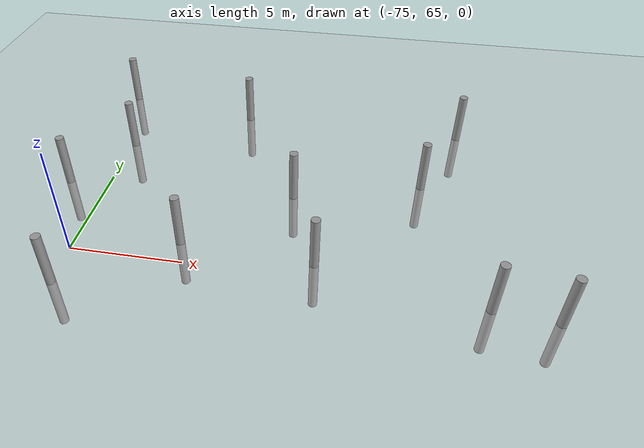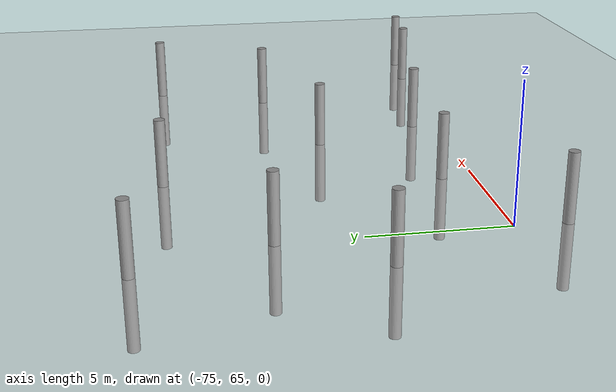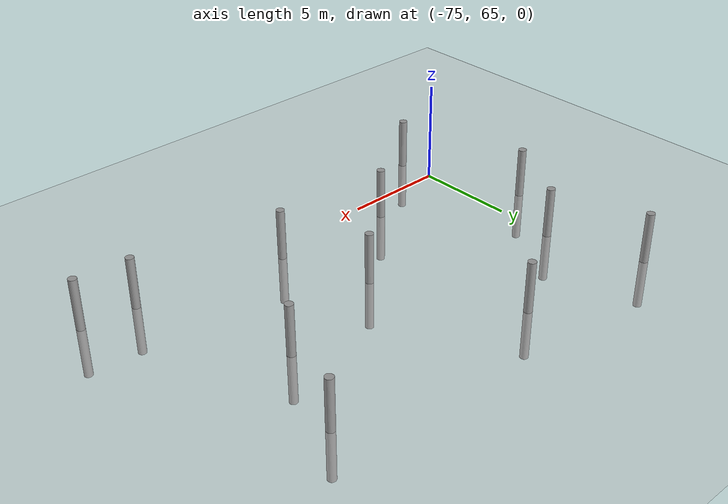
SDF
<sdf version="1.6">
 <world name="default">
  <model name="ground_plane">
   <static>1</static>
   <link name="link">
    <collision name="collision">
     <geometry><plane><normal>0 0 1</normal><size>100 100</size></plane></geometry>
     <surface><friction><ode><mu>100</mu><mu2>50</mu2></ode></friction></surface>
    </collision>
    <visual name="visual">
     <cast_shadows>0</cast_shadows>
     <geometry><plane><normal>0 0 1</normal><size>100 100</size></plane></geometry>
     <material>
      <script><uri>file://media/materials/scripts/gazebo.material</uri><name>Gazebo/Grey</name></script>
     </material>
    </visual>
   </link>
  </model>
  <model name="empty_pillars">
   <link name="link">
    <inertial>
     <mass>1</mass>
     <inertia><ixx>0.145833</ixx><ixy>0</ixy><ixz>0</ixz><iyy>0.145833</iyy><iyz>0</iyz><izz>0.125</izz></inertia>
    </inertial>
    <visual name="visual">
     <geometry><cylinder><radius>0.2</radius><length>5</length></cylinder></geometry>
     <material>
      <script><name>Gazebo/Grey</name><uri>file://media/materials/scripts/gazebo.material</uri></script>
      <shader type="vertex"><normal_map>__default__</normal_map></shader>
      <ambient>0.3 0.3 0.3 1</ambient>
      <diffuse>0.7 0.7 0.7 1</diffuse>
      <specular>0.01 0.01 0.01 1</specular>
      <emissive>0 0 0 1</emissive>
     </material>
    </visual>
    <collision name="collision">
     <geometry><cylinder><radius>0.05</radius><length>5</length></cylinder></geometry>
     <surface>
      <friction>
       <ode><mu>1</mu><mu2>1</mu2><fdir1>0 0 0</fdir1><slip1>0</slip1><slip2>0</slip2></ode>
       <torsional>
        <coefficient>1</coefficient>
        <patch_radius>0</patch_radius>
        <surface_radius>0</surface_radius>
        <use_patch_radius>1</use_patch_radius>
        <ode><slip>0</slip></ode>
       </torsional>
      </friction>
      <bounce><restitution_coefficient>0</restitution_coefficient><threshold>1e+06</threshold></bounce>
      <contact>
       <collide_without_contact>0</collide_without_contact>
       <collide_without_contact_bitmask>1</collide_without_contact_bitmask>
       <collide_bitmask>1</collide_bitmask>
       <ode>
        <soft_cfm>0</soft_cfm>
        <soft_erp>0.2</soft_erp>
        <kp>1e+13</kp>
        <kd>1</kd>
        <max_vel>0.01</max_vel>
        <min_depth>0</min_depth>
       </ode>
       <bullet>
        <split_impulse>1</split_impulse>
        <split_impulse_penetration_threshold>-0.01</split_impulse_penetration_threshold>
        <soft_cfm>0</soft_cfm>
        <soft_erp>0.2</soft_erp>
        <kp>1e+13</kp>
        <kd>1</kd>
       </bullet>
      </contact>
     </surface>
    </collision>
   </link>
   <model name="empty_pillar_clone">
    <link name="link">
     <inertial>
      <mass>1</mass>
      <inertia><ixx>0.145833</ixx><ixy>0</ixy><ixz>0</ixz><iyy>0.145833</iyy><iyz>0</iyz><izz>0.125</izz></inertia>
     </inertial>
     <visual name="visual">
      <geometry><cylinder><radius>0.2</radius><length>5</length></cylinder></geometry>
      <material>
       <script><name>Gazebo/Grey</name><uri>file://media/materials/scripts/gazebo.material</uri></script>
       <shader type="vertex"><normal_map>__default__</normal_map></shader>
       <ambient>0.3 0.3 0.3 1</ambient>
       <diffuse>0.7 0.7 0.7 1</diffuse>
       <specular>0.01 0.01 0.01 1</specular>
       <emissive>0 0 0 1</emissive>
      </material>
     </visual>
     <collision name="collision">
      <geometry><cylinder><radius>0.05</radius><length>5</length></cylinder></geometry>
      <surface>
       <friction>
        <ode><mu>1</mu><mu2>1</mu2><fdir1>0 0 0</fdir1><slip1>0</slip1><slip2>0</slip2></ode>
        <torsional>
         <coefficient>1</coefficient>
         <patch_radius>0</patch_radius>
         <surface_radius>0</surface_radius>
         <use_patch_radius>1</use_patch_radius>
         <ode><slip>0</slip></ode>
        </torsional>
       </friction>
       <bounce><restitution_coefficient>0</restitution_coefficient><threshold>1e+06</threshold></bounce>
       <contact>
        <collide_without_contact>0</collide_without_contact>
        <collide_without_contact_bitmask>1</collide_without_contact_bitmask>
        <collide_bitmask>1</collide_bitmask>
        <ode>
         <soft_cfm>0</soft_cfm>
         <soft_erp>0.2</soft_erp>
         <kp>1e+13</kp>
         <kd>1</kd>
         <max_vel>0.01</max_vel>
         <min_depth>0</min_depth>
        </ode>
        <bullet>
         <split_impulse>1</split_impulse>
         <split_impulse_penetration_threshold>-0.01</split_impulse_penetration_threshold>
         <soft_cfm>0</soft_cfm>
         <soft_erp>0.2</soft_erp>
         <kp>1e+13</kp>
         <kd>1</kd>
        </bullet>
       </contact>
      </surface>
     </collision>
    </link>
    <static>0</static>
    <pose>1.47843 -4.49529 0 0 -0 0</pose>
   </model>
   <model name="empty_pillar_clone_0">
    <link name="link">
     <inertial>
      <mass>1</mass>
      <inertia><ixx>0.145833</ixx><ixy>0</ixy><ixz>0</ixz><iyy>0.145833</iyy><iyz>0</iyz><izz>0.125</izz></inertia>
     </inertial>
     <visual name="visual">
      <geometry><cylinder><radius>0.2</radius><length>5</length></cylinder></geometry>
      <material>
       <script><name>Gazebo/Grey</name><uri>file://media/materials/scripts/gazebo.material</uri></script>
       <shader type="vertex"><normal_map>__default__</normal_map></shader>
       <ambient>0.3 0.3 0.3 1</ambient>
       <diffuse>0.7 0.7 0.7 1</diffuse>
       <specular>0.01 0.01 0.01 1</specular>
       <emissive>0 0 0 1</emissive>
      </material>
     </visual>
     <collision name="collision">
      <geometry><cylinder><radius>0.05</radius><length>5</length></cylinder></geometry>
      <surface>
       <friction>
        <ode><mu>1</mu><mu2>1</mu2><fdir1>0 0 0</fdir1><slip1>0</slip1><slip2>0</slip2></ode>
        <torsional>
         <coefficient>1</coefficient>
         <patch_radius>0</patch_radius>
         <surface_radius>0</surface_radius>
         <use_patch_radius>1</use_patch_radius>
         <ode><slip>0</slip></ode>
        </torsional>
       </friction>
       <bounce><restitution_coefficient>0</restitution_coefficient><threshold>1e+06</threshold></bounce>
       <contact>
        <collide_without_contact>0</collide_without_contact>
        <collide_without_contact_bitmask>1</collide_without_contact_bitmask>
        <collide_bitmask>1</collide_bitmask>
        <ode>
         <soft_cfm>0</soft_cfm>
         <soft_erp>0.2</soft_erp>
         <kp>1e+13</kp>
         <kd>1</kd>
         <max_vel>0.01</max_vel>
         <min_depth>0</min_depth>
        </ode>
        <bullet>
         <split_impulse>1</split_impulse>
         <split_impulse_penetration_threshold>-0.01</split_impulse_penetration_threshold>
         <soft_cfm>0</soft_cfm>
         <soft_erp>0.2</soft_erp>
         <kp>1e+13</kp>
         <kd>1</kd>
        </bullet>
       </contact>
      </surface>
     </collision>
    </link>
    <static>0</static>
    <pose>10.3453 -7.35986 0 0 -0 0</pose>
   </model>
   <model name="empty_pillar_clone_2">
    <link name="link">
     <inertial>
      <mass>1</mass>
      <inertia><ixx>0.145833</ixx><ixy>0</ixy><ixz>0</ixz><iyy>0.145833</iyy><iyz>0</iyz><izz>0.125</izz></inertia>
     </inertial>
     <visual name="visual">
      <geometry><cylinder><radius>0.2</radius><length>5</length></cylinder></geometry>
      <material>
       <script><name>Gazebo/Grey</name><uri>file://media/materials/scripts/gazebo.material</uri></script>
       <shader type="vertex"><normal_map>__default__</normal_map></shader>
       <ambient>0.3 0.3 0.3 1</ambient>
       <diffuse>0.7 0.7 0.7 1</diffuse>
       <specular>0.01 0.01 0.01 1</specular>
       <emissive>0 0 0 1</emissive>
      </material>
     </visual>
     <collision name="collision">
      <geometry><cylinder><radius>0.05</radius><length>5</length></cylinder></geometry>
      <surface>
       <friction>
        <ode><mu>1</mu><mu2>1</mu2><fdir1>0 0 0</fdir1><slip1>0</slip1><slip2>0</slip2></ode>
        <torsional>
         <coefficient>1</coefficient>
         <patch_radius>0</patch_radius>
         <surface_radius>0</surface_radius>
         <use_patch_radius>1</use_patch_radius>
         <ode><slip>0</slip></ode>
        </torsional>
       </friction>
       <bounce><restitution_coefficient>0</restitution_coefficient><threshold>1e+06</threshold></bounce>
       <contact>
        <collide_without_contact>0</collide_without_contact>
        <collide_without_contact_bitmask>1</collide_without_contact_bitmask>
        <collide_bitmask>1</collide_bitmask>
        <ode>
         <soft_cfm>0</soft_cfm>
         <soft_erp>0.2</soft_erp>
         <kp>1e+13</kp>
         <kd>1</kd>
         <max_vel>0.01</max_vel>
         <min_depth>0</min_depth>
        </ode>
        <bullet>
         <split_impulse>1</split_impulse>
         <split_impulse_penetration_threshold>-0.01</split_impulse_penetration_threshold>
         <soft_cfm>0</soft_cfm>
         <soft_erp>0.2</soft_erp>
         <kp>1e+13</kp>
         <kd>1</kd>
        </bullet>
       </contact>
      </surface>
     </collision>
    </link>
    <static>0</static>
    <pose>6.92427 -1.06221 0 0 -0 0</pose>
   </model>
   <model name="empty_pillar_clone_3">
    <link name="link">
     <inertial>
      <mass>1</mass>
      <inertia><ixx>0.145833</ixx><ixy>0</ixy><ixz>0</ixz><iyy>0.145833</iyy><iyz>0</iyz><izz>0.125</izz></inertia>
     </inertial>
     <visual name="visual">
      <geometry><cylinder><radius>0.2</radius><length>5</length></cylinder></geometry>
      <material>
       <script><name>Gazebo/Grey</name><uri>file://media/materials/scripts/gazebo.material</uri></script>
       <shader type="vertex"><normal_map>__default__</normal_map></shader>
       <ambient>0.3 0.3 0.3 1</ambient>
       <diffuse>0.7 0.7 0.7 1</diffuse>
       <specular>0.01 0.01 0.01 1</specular>
       <emissive>0 0 0 1</emissive>
      </material>
     </visual>
     <collision name="collision">
      <geometry><cylinder><radius>0.05</radius><length>5</length></cylinder></geometry>
      <surface>
       <friction>
        <ode><mu>1</mu><mu2>1</mu2><fdir1>0 0 0</fdir1><slip1>0</slip1><slip2>0</slip2></ode>
        <torsional>
         <coefficient>1</coefficient>
         <patch_radius>0</patch_radius>
         <surface_radius>0</surface_radius>
         <use_patch_radius>1</use_patch_radius>
         <ode><slip>0</slip></ode>
        </torsional>
       </friction>
       <bounce><restitution_coefficient>0</restitution_coefficient><threshold>1e+06</threshold></bounce>
       <contact>
        <collide_without_contact>0</collide_without_contact>
        <collide_without_contact_bitmask>1</collide_without_contact_bitmask>
        <collide_bitmask>1</collide_bitmask>
        <ode>
         <soft_cfm>0</soft_cfm>
         <soft_erp>0.2</soft_erp>
         <kp>1e+13</kp>
         <kd>1</kd>
         <max_vel>0.01</max_vel>
         <min_depth>0</min_depth>
        </ode>
        <bullet>
         <split_impulse>1</split_impulse>
         <split_impulse_penetration_threshold>-0.01</split_impulse_penetration_threshold>
         <soft_cfm>0</soft_cfm>
         <soft_erp>0.2</soft_erp>
         <kp>1e+13</kp>
         <kd>1</kd>
        </bullet>
       </contact>
      </surface>
     </collision>
    </link>
    <static>0</static>
    <pose>5.99316 -11.2211 0 0 -0 0</pose>
   </model>
   <model name="empty_pillar_clone_33">
    <link name="link">
     <inertial>
      <mass>1</mass>
      <inertia><ixx>0.145833</ixx><ixy>0</ixy><ixz>0</ixz><iyy>0.145833</iyy><iyz>0</iyz><izz>0.125</izz></inertia>
     </inertial>
     <visual name="visual">
      <geometry><cylinder><radius>0.2</radius><length>5</length></cylinder></geometry>
      <material>
       <script><name>Gazebo/Grey</name><uri>file://media/materials/scripts/gazebo.material</uri></script>
       <shader type="vertex"><normal_map>__default__</normal_map></shader>
       <ambient>0.3 0.3 0.3 1</ambient>
       <diffuse>0.7 0.7 0.7 1</diffuse>
       <specular>0.01 0.01 0.01 1</specular>
       <emissive>0 0 0 1</emissive>
      </material>
     </visual>
     <collision name="collision">
      <geometry><cylinder><radius>0.05</radius><length>5</length></cylinder></geometry>
      <surface>
       <friction>
        <ode><mu>1</mu><mu2>1</mu2><fdir1>0 0 0</fdir1><slip1>0</slip1><slip2>0</slip2></ode>
        <torsional>
         <coefficient>1</coefficient>
         <patch_radius>0</patch_radius>
         <surface_radius>0</surface_radius>
         <use_patch_radius>1</use_patch_radius>
         <ode><slip>0</slip></ode>
        </torsional>
       </friction>
       <bounce><restitution_coefficient>0</restitution_coefficient><threshold>1e+06</threshold></bounce>
       <contact>
        <collide_without_contact>0</collide_without_contact>
        <collide_without_contact_bitmask>1</collide_without_contact_bitmask>
        <collide_bitmask>1</collide_bitmask>
        <ode>
         <soft_cfm>0</soft_cfm>
         <soft_erp>0.2</soft_erp>
         <kp>1e+13</kp>
         <kd>1</kd>
         <max_vel>0.01</max_vel>
         <min_depth>0</min_depth>
        </ode>
        <bullet>
         <split_impulse>1</split_impulse>
         <split_impulse_penetration_threshold>-0.01</split_impulse_penetration_threshold>
         <soft_cfm>0</soft_cfm>
         <soft_erp>0.2</soft_erp>
         <kp>1e+13</kp>
         <kd>1</kd>
        </bullet>
       </contact>
      </surface>
     </collision>
    </link>
    <static>0</static>
    <pose>21.5621 -13.0704 0 0 -0 0</pose>
   </model>
   <model name="empty_pillar_clone_4">
    <link name="link">
     <inertial>
      <mass>1</mass>
      <inertia><ixx>0.145833</ixx><ixy>0</ixy><ixz>0</ixz><iyy>0.145833</iyy><iyz>0</iyz><izz>0.125</izz></inertia>
     </inertial>
     <visual name="visual">
      <geometry><cylinder><radius>0.2</radius><length>5</length></cylinder></geometry>
      <material>
       <script><name>Gazebo/Grey</name><uri>file://media/materials/scripts/gazebo.material</uri></script>
       <shader type="vertex"><normal_map>__default__</normal_map></shader>
       <ambient>0.3 0.3 0.3 1</ambient>
       <diffuse>0.7 0.7 0.7 1</diffuse>
       <specular>0.01 0.01 0.01 1</specular>
       <emissive>0 0 0 1</emissive>
      </material>
     </visual>
     <collision name="collision">
      <geometry><cylinder><radius>0.05</radius><length>5</length></cylinder></geometry>
      <surface>
       <friction>
        <ode><mu>1</mu><mu2>1</mu2><fdir1>0 0 0</fdir1><slip1>0</slip1><slip2>0</slip2></ode>
        <torsional>
         <coefficient>1</coefficient>
         <patch_radius>0</patch_radius>
         <surface_radius>0</surface_radius>
         <use_patch_radius>1</use_patch_radius>
         <ode><slip>0</slip></ode>
        </torsional>
       </friction>
       <bounce><restitution_coefficient>0</restitution_coefficient><threshold>1e+06</threshold></bounce>
       <contact>
        <collide_without_contact>0</collide_without_contact>
        <collide_without_contact_bitmask>1</collide_without_contact_bitmask>
        <collide_bitmask>1</collide_bitmask>
        <ode>
         <soft_cfm>0</soft_cfm>
         <soft_erp>0.2</soft_erp>
         <kp>1e+13</kp>
         <kd>1</kd>
         <max_vel>0.01</max_vel>
         <min_depth>0</min_depth>
        </ode>
        <bullet>
         <split_impulse>1</split_impulse>
         <split_impulse_penetration_threshold>-0.01</split_impulse_penetration_threshold>
         <soft_cfm>0</soft_cfm>
         <soft_erp>0.2</soft_erp>
         <kp>1e+13</kp>
         <kd>1</kd>
        </bullet>
       </contact>
      </surface>
     </collision>
    </link>
    <static>0</static>
    <pose>1.48428 -14.2998 0 0 -0 0</pose>
   </model>
   <model name="empty_pillar_clone_47">
    <link name="link">
     <inertial>
      <mass>1</mass>
      <inertia><ixx>0.145833</ixx><ixy>0</ixy><ixz>0</ixz><iyy>0.145833</iyy><iyz>0</iyz><izz>0.125</izz></inertia>
     </inertial>
     <visual name="visual">
      <geometry><cylinder><radius>0.2</radius><length>5</length></cylinder></geometry>
      <material>
       <script><name>Gazebo/Grey</name><uri>file://media/materials/scripts/gazebo.material</uri></script>
       <shader type="vertex"><normal_map>__default__</normal_map></shader>
       <ambient>0.3 0.3 0.3 1</ambient>
       <diffuse>0.7 0.7 0.7 1</diffuse>
       <specular>0.01 0.01 0.01 1</specular>
       <emissive>0 0 0 1</emissive>
      </material>
     </visual>
     <collision name="collision">
      <geometry><cylinder><radius>0.05</radius><length>5</length></cylinder></geometry>
      <surface>
       <friction>
        <ode><mu>1</mu><mu2>1</mu2><fdir1>0 0 0</fdir1><slip1>0</slip1><slip2>0</slip2></ode>
        <torsional>
         <coefficient>1</coefficient>
         <patch_radius>0</patch_radius>
         <surface_radius>0</surface_radius>
         <use_patch_radius>1</use_patch_radius>
         <ode><slip>0</slip></ode>
        </torsional>
       </friction>
       <bounce><restitution_coefficient>0</restitution_coefficient><threshold>1e+06</threshold></bounce>
       <contact>
        <collide_without_contact>0</collide_without_contact>
        <collide_without_contact_bitmask>1</collide_without_contact_bitmask>
        <collide_bitmask>1</collide_bitmask>
        <ode>
         <soft_cfm>0</soft_cfm>
         <soft_erp>0.2</soft_erp>
         <kp>1e+13</kp>
         <kd>1</kd>
         <max_vel>0.01</max_vel>
         <min_depth>0</min_depth>
        </ode>
        <bullet>
         <split_impulse>1</split_impulse>
         <split_impulse_penetration_threshold>-0.01</split_impulse_penetration_threshold>
         <soft_cfm>0</soft_cfm>
         <soft_erp>0.2</soft_erp>
         <kp>1e+13</kp>
         <kd>1</kd>
        </bullet>
       </contact>
      </surface>
     </collision>
    </link>
    <static>0</static>
    <pose>-0.569433 -7.97346 0 0 -0 0</pose>
   </model>
   <model name="empty_pillar_clone_48">
    <link name="link">
     <inertial>
      <mass>1</mass>
      <inertia><ixx>0.145833</ixx><ixy>0</ixy><ixz>0</ixz><iyy>0.145833</iyy><iyz>0</iyz><izz>0.125</izz></inertia>
     </inertial>
     <visual name="visual">
      <geometry><cylinder><radius>0.2</radius><length>5</length></cylinder></geometry>
      <material>
       <script><name>Gazebo/Grey</name><uri>file://media/materials/scripts/gazebo.material</uri></script>
       <shader type="vertex"><normal_map>__default__</normal_map></shader>
       <ambient>0.3 0.3 0.3 1</ambient>
       <diffuse>0.7 0.7 0.7 1</diffuse>
       <specular>0.01 0.01 0.01 1</specular>
       <emissive>0 0 0 1</emissive>
      </material>
     </visual>
     <collision name="collision">
      <geometry><cylinder><radius>0.05</radius><length>5</length></cylinder></geometry>
      <surface>
       <friction>
        <ode><mu>1</mu><mu2>1</mu2><fdir1>0 0 0</fdir1><slip1>0</slip1><slip2>0</slip2></ode>
        <torsional>
         <coefficient>1</coefficient>
         <patch_radius>0</patch_radius>
         <surface_radius>0</surface_radius>
         <use_patch_radius>1</use_patch_radius>
         <ode><slip>0</slip></ode>
        </torsional>
       </friction>
       <bounce><restitution_coefficient>0</restitution_coefficient><threshold>1e+06</threshold></bounce>
       <contact>
        <collide_without_contact>0</collide_without_contact>
        <collide_without_contact_bitmask>1</collide_without_contact_bitmask>
        <collide_bitmask>1</collide_bitmask>
        <ode>
         <soft_cfm>0</soft_cfm>
         <soft_erp>0.2</soft_erp>
         <kp>1e+13</kp>
         <kd>1</kd>
         <max_vel>0.01</max_vel>
         <min_depth>0</min_depth>
        </ode>
        <bullet>
         <split_impulse>1</split_impulse>
         <split_impulse_penetration_threshold>-0.01</split_impulse_penetration_threshold>
         <soft_cfm>0</soft_cfm>
         <soft_erp>0.2</soft_erp>
         <kp>1e+13</kp>
         <kd>1</kd>
        </bullet>
       </contact>
      </surface>
     </collision>
    </link>
    <static>0</static>
    <pose>16.2633 -5.65052 0 0 -0 0</pose>
   </model>
   <model name="empty_pillar_clone_51">
    <link name="link">
     <inertial>
      <mass>1</mass>
      <inertia><ixx>0.145833</ixx><ixy>0</ixy><ixz>0</ixz><iyy>0.145833</iyy><iyz>0</iyz><izz>0.125</izz></inertia>
     </inertial>
     <visual name="visual">
      <geometry><cylinder><radius>0.2</radius><length>5</length></cylinder></geometry>
      <material>
       <script><name>Gazebo/Grey</name><uri>file://media/materials/scripts/gazebo.material</uri></script>
       <shader type="vertex"><normal_map>__default__</normal_map></shader>
       <ambient>0.3 0.3 0.3 1</ambient>
       <diffuse>0.7 0.7 0.7 1</diffuse>
       <specular>0.01 0.01 0.01 1</specular>
       <emissive>0 0 0 1</emissive>
      </material>
     </visual>
     <collision name="collision">
      <geometry><cylinder><radius>0.05</radius><length>5</length></cylinder></geometry>
      <surface>
       <friction>
        <ode><mu>1</mu><mu2>1</mu2><fdir1>0 0 0</fdir1><slip1>0</slip1><slip2>0</slip2></ode>
        <torsional>
         <coefficient>1</coefficient>
         <patch_radius>0</patch_radius>
         <surface_radius>0</surface_radius>
         <use_patch_radius>1</use_patch_radius>
         <ode><slip>0</slip></ode>
        </torsional>
       </friction>
       <bounce><restitution_coefficient>0</restitution_coefficient><threshold>1e+06</threshold></bounce>
       <contact>
        <collide_without_contact>0</collide_without_contact>
        <collide_without_contact_bitmask>1</collide_without_contact_bitmask>
        <collide_bitmask>1</collide_bitmask>
        <ode>
         <soft_cfm>0</soft_cfm>
         <soft_erp>0.2</soft_erp>
         <kp>1e+13</kp>
         <kd>1</kd>
         <max_vel>0.01</max_vel>
         <min_depth>0</min_depth>
        </ode>
        <bullet>
         <split_impulse>1</split_impulse>
         <split_impulse_penetration_threshold>-0.01</split_impulse_penetration_threshold>
         <soft_cfm>0</soft_cfm>
         <soft_erp>0.2</soft_erp>
         <kp>1e+13</kp>
         <kd>1</kd>
        </bullet>
       </contact>
      </surface>
     </collision>
    </link>
    <static>0</static>
    <pose>11.8943 -11.5792 0 0 -0 0</pose>
   </model>
   <model name="empty_pillar_clone_8">
    <link name="link">
     <inertial>
      <mass>1</mass>
      <inertia><ixx>0.145833</ixx><ixy>0</ixy><ixz>0</ixz><iyy>0.145833</iyy><iyz>0</iyz><izz>0.125</izz></inertia>
     </inertial>
     <visual name="visual">
      <geometry><cylinder><radius>0.2</radius><length>5</length></cylinder></geometry>
      <material>
       <script><name>Gazebo/Grey</name><uri>file://media/materials/scripts/gazebo.material</uri></script>
       <shader type="vertex"><normal_map>__default__</normal_map></shader>
       <ambient>0.3 0.3 0.3 1</ambient>
       <diffuse>0.7 0.7 0.7 1</diffuse>
       <specular>0.01 0.01 0.01 1</specular>
       <emissive>0 0 0 1</emissive>
      </material>
     </visual>
     <collision name="collision">
      <geometry><cylinder><radius>0.05</radius><length>5</length></cylinder></geometry>
      <surface>
       <friction>
        <ode><mu>1</mu><mu2>1</mu2><fdir1>0 0 0</fdir1><slip1>0</slip1><slip2>0</slip2></ode>
        <torsional>
         <coefficient>1</coefficient>
         <patch_radius>0</patch_radius>
         <surface_radius>0</surface_radius>
         <use_patch_radius>1</use_patch_radius>
         <ode><slip>0</slip></ode>
        </torsional>
       </friction>
       <bounce><restitution_coefficient>0</restitution_coefficient><threshold>1e+06</threshold></bounce>
       <contact>
        <collide_without_contact>0</collide_without_contact>
        <collide_without_contact_bitmask>1</collide_without_contact_bitmask>
        <collide_bitmask>1</collide_bitmask>
        <ode>
         <soft_cfm>0</soft_cfm>
         <soft_erp>0.2</soft_erp>
         <kp>1e+13</kp>
         <kd>1</kd>
         <max_vel>0.01</max_vel>
         <min_depth>0</min_depth>
        </ode>
        <bullet>
         <split_impulse>1</split_impulse>
         <split_impulse_penetration_threshold>-0.01</split_impulse_penetration_threshold>
         <soft_cfm>0</soft_cfm>
         <soft_erp>0.2</soft_erp>
         <kp>1e+13</kp>
         <kd>1</kd>
        </bullet>
       </contact>
      </surface>
     </collision>
    </link>
    <static>0</static>
    <pose>18.9854 -12.8403 0 0 -0 0</pose>
   </model>
   <model name="empty_pillar_clone_9">
    <link name="link">
     <inertial>
      <mass>1</mass>
      <inertia><ixx>0.145833</ixx><ixy>0</ixy><ixz>0</ixz><iyy>0.145833</iyy><iyz>0</iyz><izz>0.125</izz></inertia>
     </inertial>
     <visual name="visual">
      <geometry><cylinder><radius>0.2</radius><length>5</length></cylinder></geometry>
      <material>
       <script><name>Gazebo/Grey</name><uri>file://media/materials/scripts/gazebo.material</uri></script>
       <shader type="vertex"><normal_map>__default__</normal_map></shader>
       <ambient>0.3 0.3 0.3 1</ambient>
       <diffuse>0.7 0.7 0.7 1</diffuse>
       <specular>0.01 0.01 0.01 1</specular>
       <emissive>0 0 0 1</emissive>
      </material>
     </visual>
     <collision name="collision">
      <geometry><cylinder><radius>0.05</radius><length>5</length></cylinder></geometry>
      <surface>
       <friction>
        <ode><mu>1</mu><mu2>1</mu2><fdir1>0 0 0</fdir1><slip1>0</slip1><slip2>0</slip2></ode>
        <torsional>
         <coefficient>1</coefficient>
         <patch_radius>0</patch_radius>
         <surface_radius>0</surface_radius>
         <use_patch_radius>1</use_patch_radius>
         <ode><slip>0</slip></ode>
        </torsional>
       </friction>
       <bounce><restitution_coefficient>0</restitution_coefficient><threshold>1e+06</threshold></bounce>
       <contact>
        <collide_without_contact>0</collide_without_contact>
        <collide_without_contact_bitmask>1</collide_without_contact_bitmask>
        <collide_bitmask>1</collide_bitmask>
        <ode>
         <soft_cfm>0</soft_cfm>
         <soft_erp>0.2</soft_erp>
         <kp>1e+13</kp>
         <kd>1</kd>
         <max_vel>0.01</max_vel>
         <min_depth>0</min_depth>
        </ode>
        <bullet>
         <split_impulse>1</split_impulse>
         <split_impulse_penetration_threshold>-0.01</split_impulse_penetration_threshold>
         <soft_cfm>0</soft_cfm>
         <soft_erp>0.2</soft_erp>
         <kp>1e+13</kp>
         <kd>1</kd>
        </bullet>
       </contact>
      </surface>
     </collision>
    </link>
    <static>0</static>
    <pose>18.1111 -1.13899 0 0 -0 0</pose>
   </model>
   <static>0</static>
   <pose>-76.4247 77.3975 0 0 -0 0</pose>
  </model>
 </world>
</sdf>
